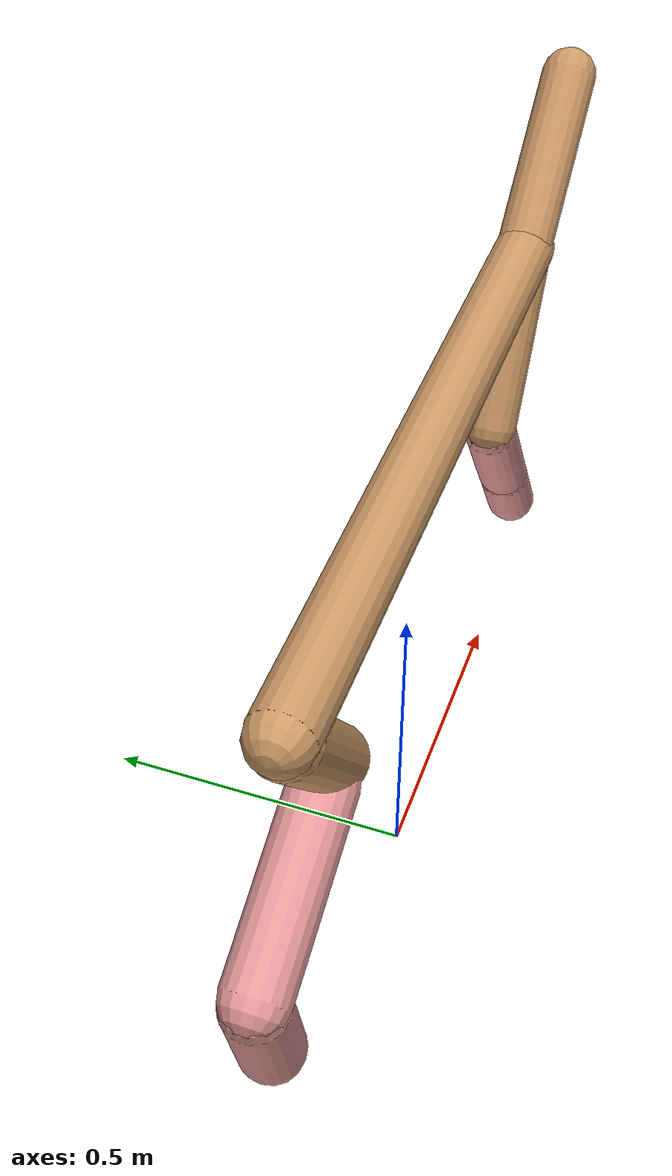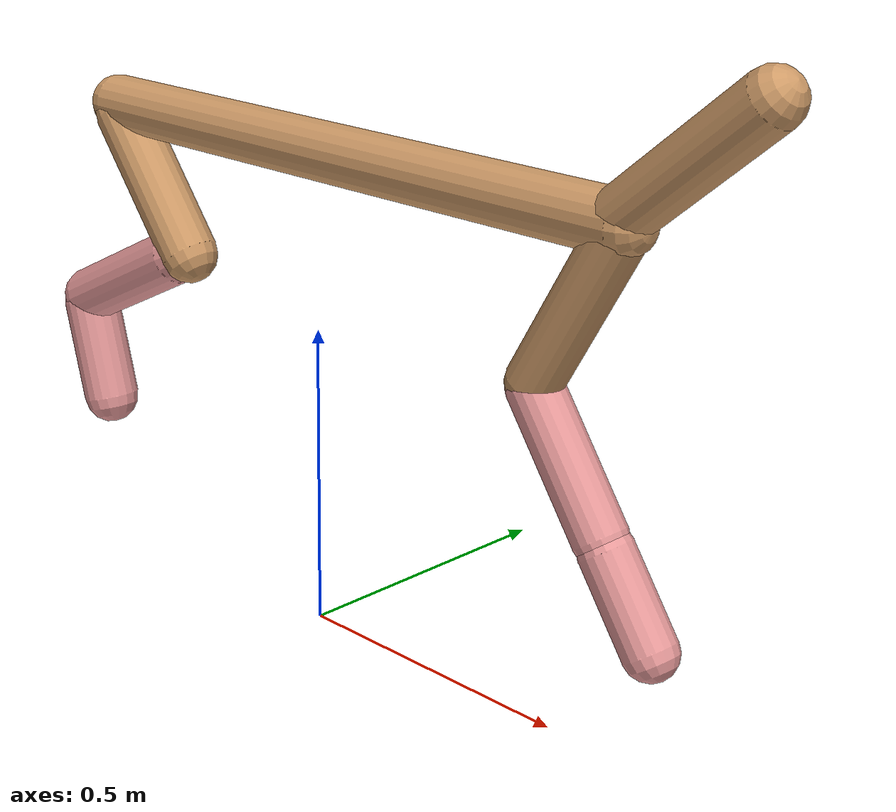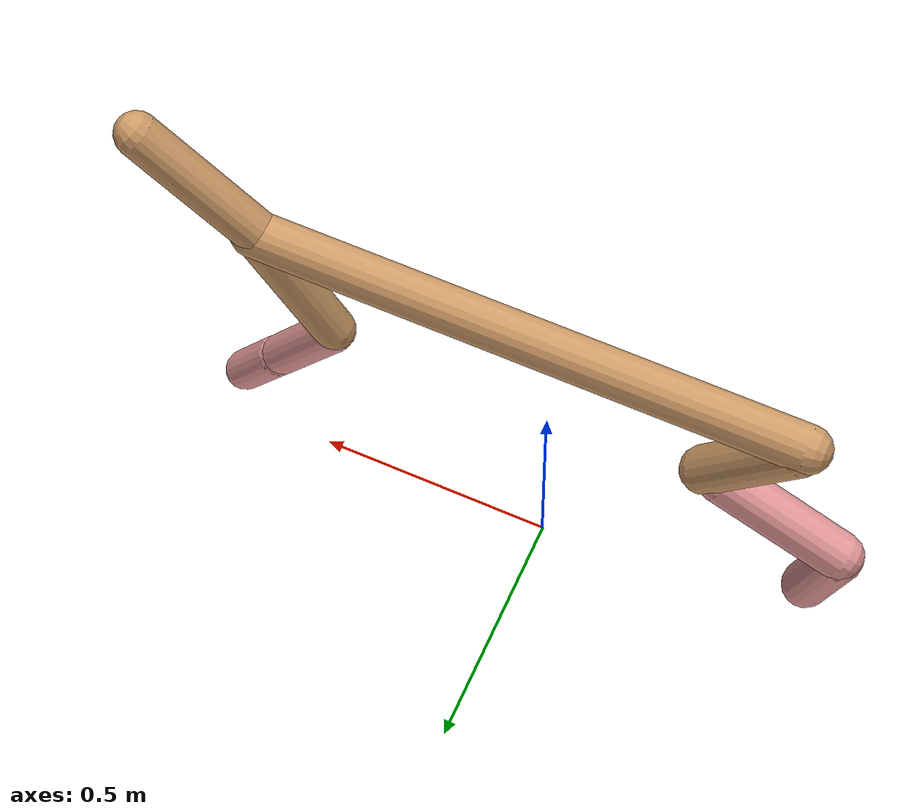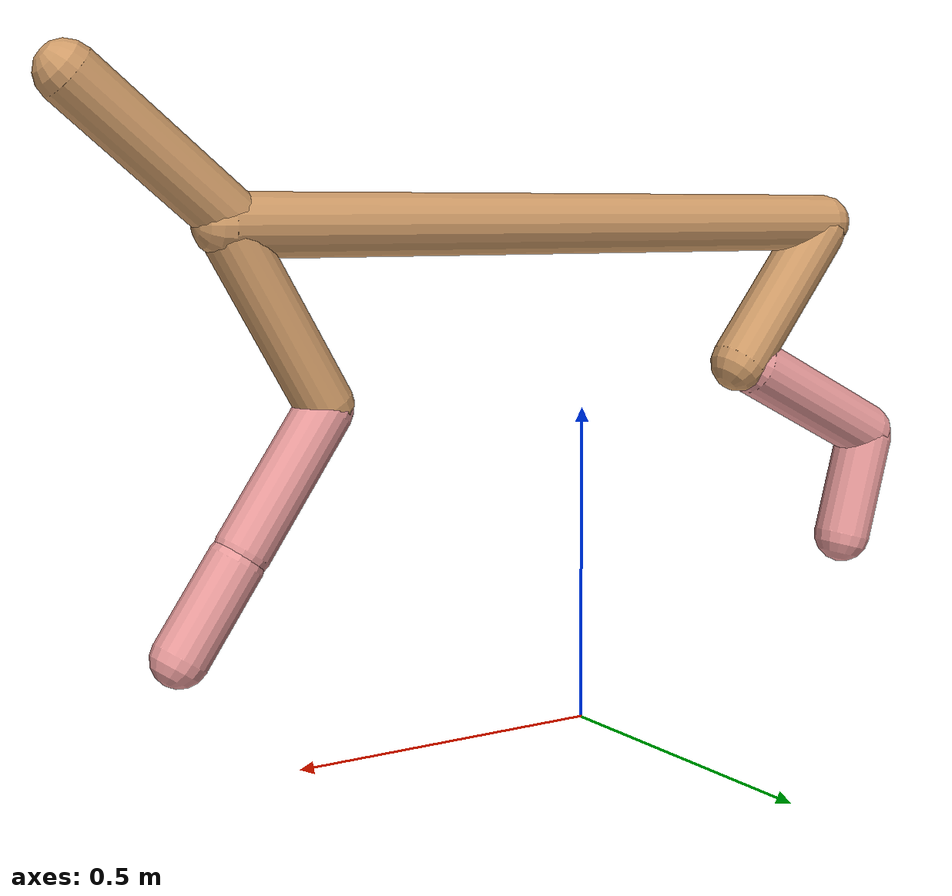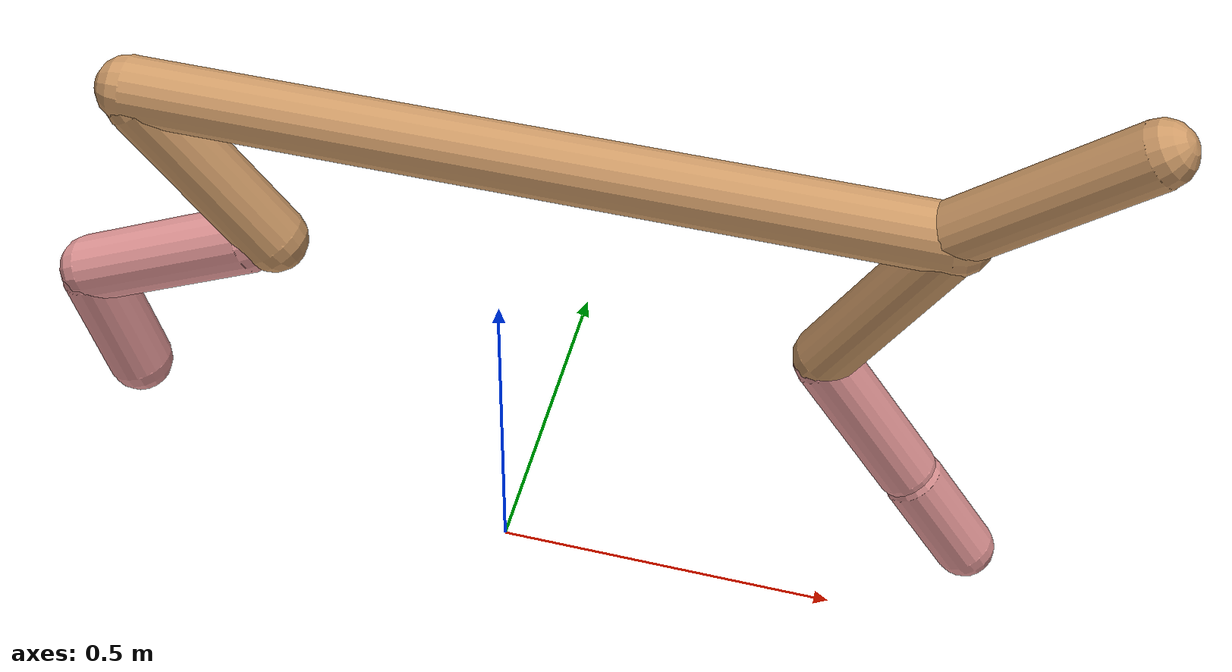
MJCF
<mujoco model="cheetah">
  <compiler angle="radian" coordinate="local" inertiafromgeom="true" settotalmass="14" />
  <default>
    <joint armature=".1" damping=".01" limited="true" solimplimit="0 .8 .03" solreflimit=".02 1" stiffness="8" />
    <geom conaffinity="0" condim="3" contype="1" friction="0.8 .1 .1" rgba="0.8 0.6 .4 1" solimp="0.0 0.8 0.01" solref="0.02 1" />
    <motor ctrllimited="true" ctrlrange="-1 1" />
  </default>
  <size nstack="300000" nuser_geom="1" />
  <option gravity="0 0 -9.81" timestep="0.01" />
  <worldbody>
    <body name="torso" pos="0.0 0.0 0.7893377798396001">
      <joint armature="0" axis="1 0 0" damping="0" limited="false" name="ignorex" pos="0 0 0" stiffness="0" type="slide" />
      <joint armature="0" axis="0 0 1" damping="0" limited="false" name="ignorez" pos="0 0 0" stiffness="0" type="slide" />
      <joint armature="0" axis="0 1 0" damping="0" limited="false" name="ignorey" pos="0 0 0" stiffness="0" type="hinge" />
      <geom fromto="-0.5 0.0 0.0 0.5994136299835782 0.0 0.0" name="torso" size="0.046364737298595894" type="capsule" />
      <geom axisangle="0 1 0 .87" name="head" pos="0.6994136299835781 0.0 0.1" size="0.04383411966394601 0.15" type="capsule" />

      <body name="bthigh" pos="-.5 0 0">
        <joint axis="0 1 0" damping="6" name="bthigh" pos="0 0 0" range="-.52 1.05" stiffness="240" type="hinge" />
        <geom axisangle="0 1 0 -3.8" name="bthigh" pos="0.09526650869490091 0.0 -0.12384646130337118" size="0.048341580535895094 0.13723649702606117" type="capsule" />
        <body name="bshin" pos="0.15053301738980182 0.0 -0.23769292260674235">
          <joint axis="0 1 0" damping="4.5" name="bshin" pos="0 0 0" range="-.785 .785" stiffness="180" type="hinge" />
          <geom axisangle="0 1 0 -2.03" name="bshin" pos="-0.1328166674234832 0.0 -0.0664083337117416" rgba="0.9 0.6 0.6 1" size="0.048341580535895094 0.14196879002695983" type="capsule" />
          <body name="bfoot" pos="-0.2656333348469664 0.0 -0.1328166674234832">
            <joint axis="0 1 0" damping="3" name="bfoot" pos="0 0 0" range="-.4 .785" stiffness="120" type="hinge" />
            <geom axisangle="0 1 0 -.27" name="bfoot" pos="0.028512932918443108 0.0 -0.0921918164362994" rgba="0.9 0.6 0.6 1" size="0.048341580535895094 0.08896710841689483" type="capsule" />
            <inertial mass="10" />
          </body>
        </body>
      </body>
      <body name="fthigh" pos="0.5994136299835782 0.0 0.0">
        <joint axis="0 1 0" damping="4.5" name="fthigh" pos="0 0 0" range="-1.5 0.8" stiffness="180" type="hinge" />
        <geom axisangle="0 1 0 .52" name="fthigh" pos="-0.07626250794267223 0.0 -0.1307357279017238" size="0.04257789484455581 0.1454287915467226" type="capsule" />
        <body name="fshin" pos="-0.15252501588534445 0.0 -0.2614714558034476">
          <joint axis="0 1 0" damping="3" name="fshin" pos="0 0 0" range="-1.2 1.1" stiffness="120" type="hinge" />
          <geom axisangle="0 1 0 -.6" name="fshin" pos="0.07079966650307151 0.0 -0.0980303074657913" rgba="0.9 0.6 0.6 1" size="0.04257789484455581 0.1159056534131774" type="capsule" />
          <body name="ffoot" pos="0.14159933300614302 0.0 -0.1960606149315826">
            <joint axis="0 1 0" damping="1.5" name="ffoot" pos="0 0 0" range="-3.1 -0.3" stiffness="60" type="hinge" />
            <geom axisangle="0 1 0 -.6" name="ffoot" pos="0.04853734914723331 0.0 -0.07550254311791849" rgba="0.9 0.6 0.6 1" size="0.04257789484455581 0.07654146923511716" type="capsule" />
            <inertial mass="10" />
          </body>
        </body>
      </body>
    </body>
  </worldbody>
  <actuator>
    <motor gear="120" joint="bthigh" name="bthigh" />
    <motor gear="90" joint="bshin" name="bshin" />
    <motor gear="60" joint="bfoot" name="bfoot" />
    <motor gear="120" joint="fthigh" name="fthigh" />
    <motor gear="60" joint="fshin" name="fshin" />
    <motor gear="30" joint="ffoot" name="ffoot" />
  </actuator>
</mujoco>
